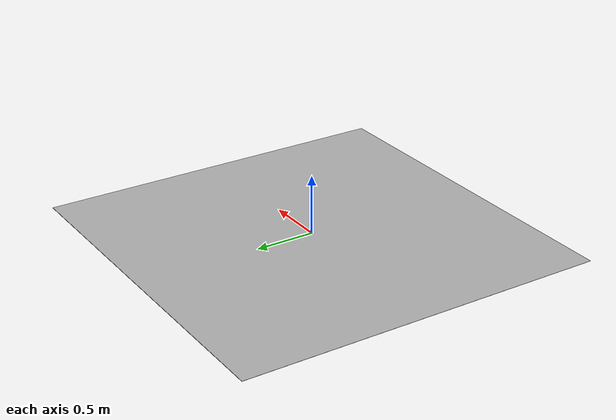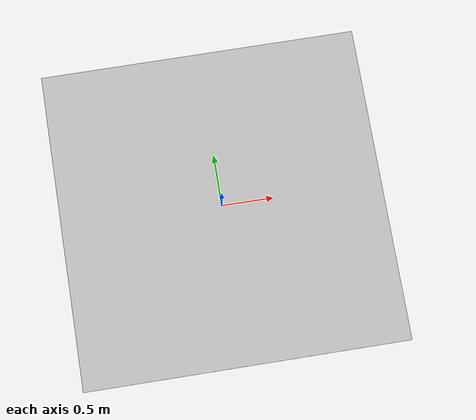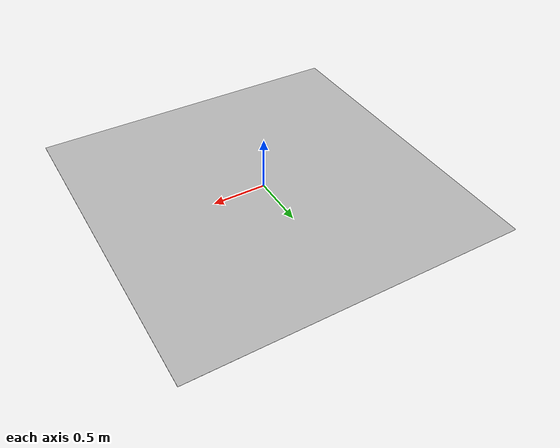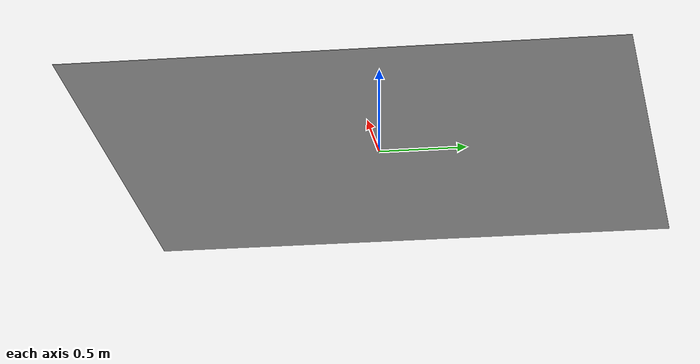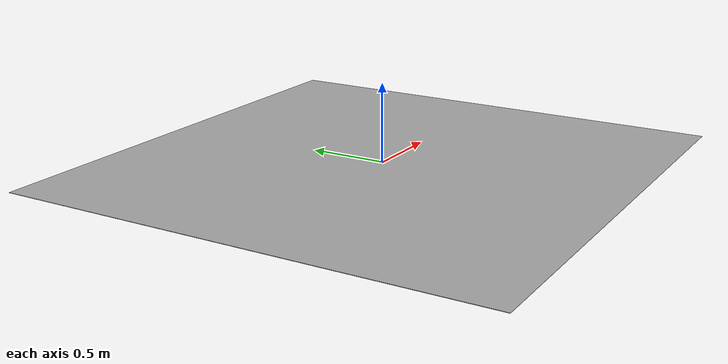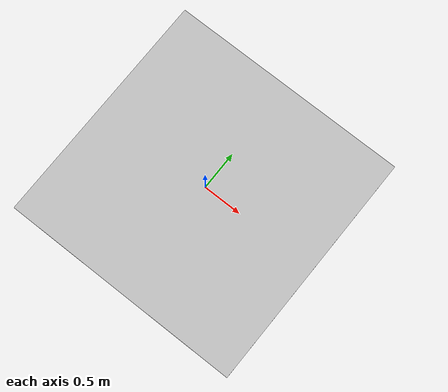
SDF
<?xml version="1.0" encoding="UTF-8"?>
<sdf version="1.4">
   <model name="my_ground_plane">
      <static>true</static>
      <link name="link">
         <collision name="collision">
            <geometry>
               <plane>
                  <normal>0 0 1</normal>
                  <size>100 100</size>
               </plane>
            </geometry>
            <surface>
               <friction>
                  <ode>
                     <mu>100</mu>
                     <mu2>50</mu2>
                  </ode>
               </friction>
            </surface>
         </collision>
         <visual name="visual">
            <cast_shadows>false</cast_shadows>
            <geometry>
               <plane>
                  <normal>0 0 1</normal>
                  <size>3.1 3.1</size>
               </plane>
            </geometry>
            <material>
               <script>
                  <uri>model://my_ground_plane/materials/scripts</uri>
                  <uri>model://my_ground_plane/materials/textures/</uri>
                  <name>MyGroundPlane/Image</name>
               </script>
            </material>
         </visual>
      </link>
   </model>
</sdf>
